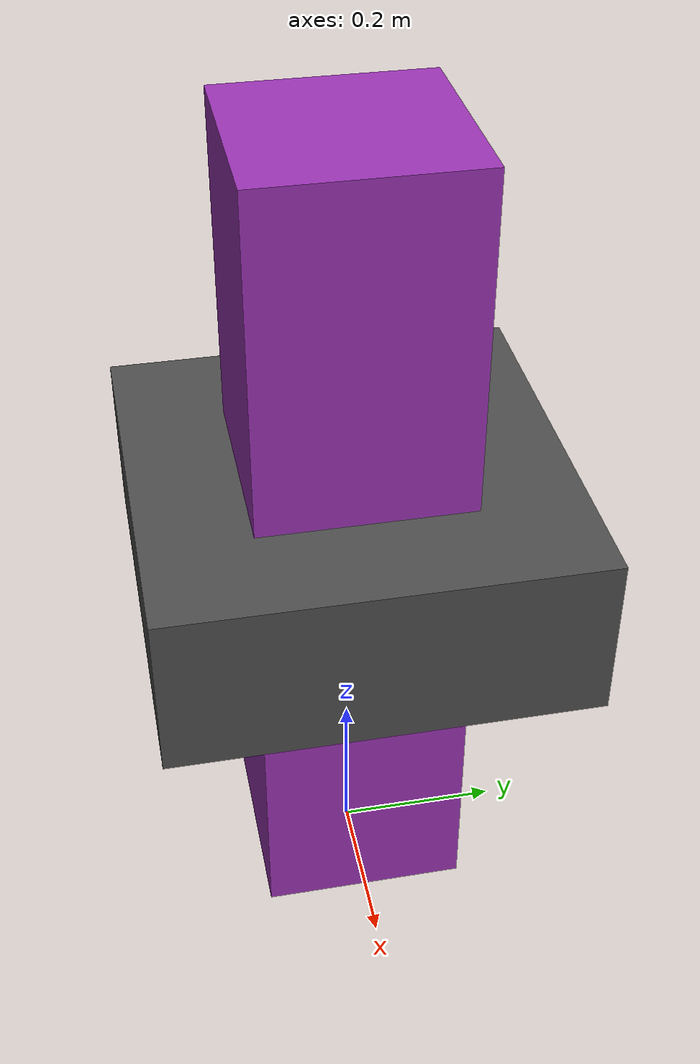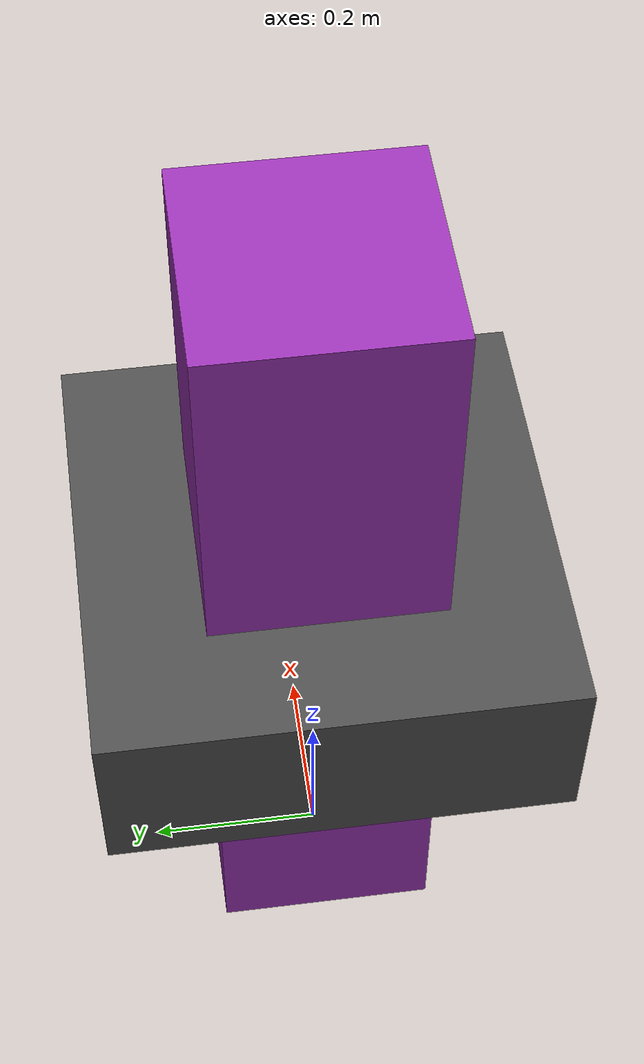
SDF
<?xml version='1.0'?>
<sdf version="1.4">
  <model name="name_model_here">
    <pose>0 0 0.5 0 0 0</pose>
    <static>true</static>
    <link name="link">
      <inertial>
        <mass>10.0</mass>
        <inertia>
          <ixx>0.83</ixx>
          <ixy>0</ixy>
          <ixz>0</ixz>
          <iyy>0.83</iyy>
          <iyz>0</iyz>
          <izz>0.83</izz>
        </inertia>
      </inertial>
      <collision name="collision">
        <geometry>
          <box>
            <size>0.5 0.5 1</size>
          </box>
        </geometry>
      </collision>
      <visual name="visual_ground">
        <geometry>
          <box>
            <size>0.5 0.5 0.2</size>
          </box>
        </geometry>
        <material>
          <script>
            <uri>file://media/materials/scripts/gazebo.material</uri>
            <name>Gazebo/DarkGray</name>
          </script>
        </material>
      </visual>

      <visual name="visual_light">
        <geometry>
          <box>
            <size>0.25 0.25 1</size>
          </box>
        </geometry>
        <material>
          <script>
            <uri>file://media/materials/scripts/gazebo.material</uri>
            <name>Gazebo/Purple</name>
          </script>
        </material>
      </visual>
    </link>
  </model>
</sdf>
